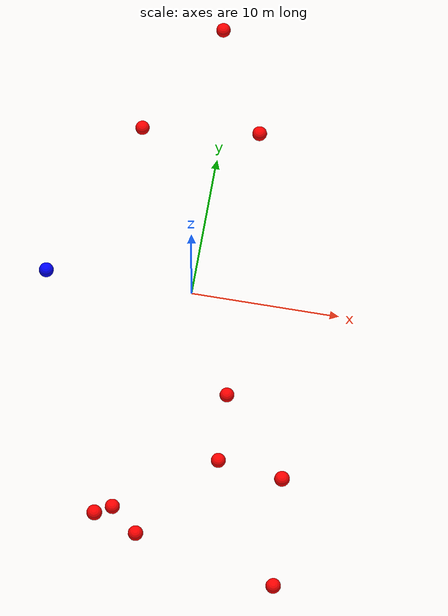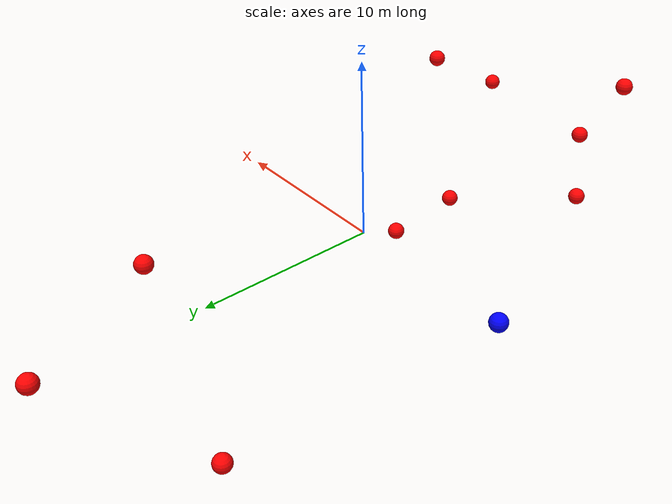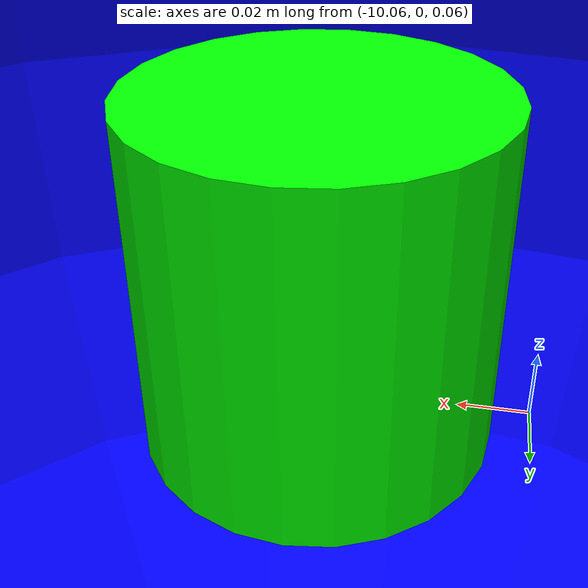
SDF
<?xml version="1.0" ?>
<sdf version="1.8">
    <world name="3d_world">
        <physics name="1ms" type="ode">
            <max_step_size>0.001</max_step_size>
            <real_time_factor>1.0</real_time_factor>
            <real_time_update_rate>1000.0</real_time_update_rate>
        </physics>
        <gravity>0 0 0</gravity>

        <plugin
            filename="gz-sim-physics-system"
            name="gz::sim::v8::systems::Physics">
        </plugin>
        <plugin
            filename="libignition-gazebo-user-commands-system.so"
            name="ignition::gazebo::systems::UserCommands">
        </plugin>
        <plugin
            filename="gz-sim-scene-broadcaster-system"
            name="gz::sim::systems::SceneBroadcaster">
        </plugin>
        <plugin
            filename="gz-sim-sensors-system"
            name="gz::sim::systems::Sensors">
            <render_engine>ogre2</render_engine>
        </plugin>

        <light type="directional" name="sun">
            <cast_shadows>true</cast_shadows>
            <pose>0 0 10 0 0 0</pose>
            <diffuse>0.8 0.8 0.8 1</diffuse>
            <specular>0.2 0.2 0.2 1</specular>
            <attenuation>
                <range>1000</range>
                <constant>0.9</constant>
                <linear>0.01</linear>
                <quadratic>0.001</quadratic>
            </attenuation>
            <direction>-0.5 0.1 -0.9</direction>
        </light>

        <!-- AGENTE -->
        <model name='agente' canonical_link='chassis'>
            <pose relative_to='world'>-10.0 0 0.0 0 0 0</pose>
            <link name='chassis'>
                <pose relative_to='__model__'>0.0 0 0.0 0 0 0</pose>
                <inertial>
                    <mass>1.14395</mass>
                    <inertia>
                        <ixx>0.095329</ixx>
                        <ixy>0</ixy>
                        <ixz>0</ixz>
                        <iyy>0.381317</iyy>
                        <iyz>0</iyz>
                        <izz>0.476646</izz>
                    </inertia>
                </inertial>
                <visual name='visual'>
                    <geometry>
                        <sphere>
                            <radius>0.5</radius>
                        </sphere>
                    </geometry>
                    <material>
                        <ambient>0.0 0.0 1.0 1</ambient>
                        <diffuse>0.0 0.0 1.0 1</diffuse>
                        <specular>0.0 0.0 1.0 1</specular>
                    </material>
                </visual>
                <collision name='collision'>
                    <geometry>
                        <sphere>
                            <radius>0.5</radius>
                        </sphere>
                    </geometry>
                </collision>
                <enable_gravity>false</enable_gravity>
            </link>

            <link name='lidar_link'>
                <pose relative_to='chassis'>0.0 0 0.1 0 0 0</pose>
                <inertial>
                    <mass>0.1</mass>
                    <inertia>
                        <ixx>0.000166667</ixx>
                        <iyy>0.000166667</iyy>
                        <izz>0.000166667</izz>
                    </inertia>
                </inertial>
                <collision name='collision'>
                    <geometry>
                        <cylinder>
                            <radius>0.05</radius>
                            <length>0.1</length>
                        </cylinder>
                    </geometry>
                </collision>
                <visual name='visual'>
                    <geometry>
                        <cylinder>
                            <radius>0.05</radius>
                            <length>0.1</length>
                        </cylinder>
                    </geometry>
                    <material>
                        <ambient>0.0 1.0 0.0 1</ambient>
                        <diffuse>0.0 1.0 0.0 1</diffuse>
                        <specular>0.0 1.0 0.0 1</specular>
                    </material>
                </visual>
                <sensor name="lidar" type="gpu_lidar">
                    <topic>scan</topic>
                    <update_rate>10</update_rate>
                    <lidar>
                        <scan>
                            <horizontal>
                                <samples>5000</samples>
                                <resolution>1</resolution>
                                <min_angle>-3.14159</min_angle>
                                <max_angle>3.14159</max_angle>
                            </horizontal>
                        </scan>
                        <range>
                            <min>0.1</min>
                            <max>10.0</max>
                            <resolution>0.01</resolution>
                        </range>
                    </lidar>
                    <visualize>true</visualize>
                    <always_on>true</always_on>
                    <update_rate>10</update_rate>
                    <pose_frame>lidar</pose_frame>
                </sensor>
                <enable_gravity>false</enable_gravity>
            </link>

            <joint name="lidar_joint" type="fixed">
                <parent>chassis</parent>
                <child>lidar_link</child>
            </joint>

            <plugin
                filename="ignition-gazebo-joint-state-publisher-system"
                name="ignition::gazebo::systems::JointStatePublisher">
            </plugin>
            <plugin
                filename="ignition-gazebo-odometry-publisher-system"
                name="ignition::gazebo::systems::OdometryPublisher">
                <dimensions>3</dimensions>
            </plugin>
            <plugin
                filename="ignition-gazebo-velocity-control-system"
                name="ignition::gazebo::systems::VelocityControl">
                <initial_linear>0.0 0 0</initial_linear>
                <initial_angular>0 0 0.0</initial_angular>
            </plugin>
            <plugin
                filename="libignition-gazebo-pose-publisher-system.so"
                name="ignition::gazebo::systems::PosePublisher">
                <topic>/agente/pose</topic>
                <frame_id>agente</frame_id>
                <update_rate>30</update_rate>
            </plugin>
        </model>

        <!-- OBSTACLE 1 -->
        <model name='obstacle_1' canonical_link='obstacle'>
            <static>false</static>
            <pose relative_to='world'>8.16 -13.08 3.64 0 0 0</pose>
            <link name='obstacle'>
                <pose relative_to='__model__'>0.0 0 0.0 0 0 0</pose>
                <visual name='visual'>
                    <geometry>
                        <sphere>
                            <radius>0.50</radius>
                        </sphere>
                    </geometry>
                    <material>
                        <ambient>1.0 0.0 0.0 1</ambient>
                        <diffuse>1.0 0.0 0.0 1</diffuse>
                        <specular>1.0 0.0 0.0 1</specular>
                    </material>
                </visual>
                <collision name='collision'>
                    <geometry>
                        <sphere>
                            <radius>0.50</radius>
                        </sphere>
                    </geometry>
                </collision>
                <enable_gravity>false</enable_gravity>
            </link>

            <plugin
                filename="ignition-gazebo-velocity-control-system"
                name="ignition::gazebo::systems::VelocityControl">
                <initial_linear>-0.47 1.87 -0.52</initial_linear>
                <initial_angular>0 0 0</initial_angular>
            </plugin>

            <plugin
                filename="ignition-gazebo-odometry-publisher-system"
                name="ignition::gazebo::systems::OdometryPublisher">
                <dimensions>3</dimensions>
            </plugin>
        </model>

        <!-- OBSTACLE 2 -->
        <model name='obstacle_2' canonical_link='obstacle'>
            <static>false</static>
            <pose relative_to='world'>-5.89 13.24 -3.59 0 0 0</pose>
            <link name='obstacle'>
                <pose relative_to='__model__'>0.0 0 0.0 0 0 0</pose>
                <visual name='visual'>
                    <geometry>
                        <sphere>
                            <radius>0.50</radius>
                        </sphere>
                    </geometry>
                    <material>
                        <ambient>1.0 0.0 0.0 1</ambient>
                        <diffuse>1.0 0.0 0.0 1</diffuse>
                        <specular>1.0 0.0 0.0 1</specular>
                    </material>
                </visual>
                <collision name='collision'>
                    <geometry>
                        <sphere>
                            <radius>0.50</radius>
                        </sphere>
                    </geometry>
                </collision>
                <enable_gravity>false</enable_gravity>
            </link>

            <plugin
                filename="ignition-gazebo-velocity-control-system"
                name="ignition::gazebo::systems::VelocityControl">
                <initial_linear>1.05 -1.64 0.44</initial_linear>
                <initial_angular>0 0 0</initial_angular>
            </plugin>

            <plugin
                filename="ignition-gazebo-odometry-publisher-system"
                name="ignition::gazebo::systems::OdometryPublisher">
                <dimensions>3</dimensions>
            </plugin>
        </model>

        <!-- OBSTACLE 3 -->
        <model name='obstacle_3' canonical_link='obstacle'>
            <static>false</static>
            <pose relative_to='world'>-3.20 -17.56 4.34 0 0 0</pose>
            <link name='obstacle'>
                <pose relative_to='__model__'>0.0 0 0.0 0 0 0</pose>
                <visual name='visual'>
                    <geometry>
                        <sphere>
                            <radius>0.50</radius>
                        </sphere>
                    </geometry>
                    <material>
                        <ambient>1.0 0.0 0.0 1</ambient>
                        <diffuse>1.0 0.0 0.0 1</diffuse>
                        <specular>1.0 0.0 0.0 1</specular>
                    </material>
                </visual>
                <collision name='collision'>
                    <geometry>
                        <sphere>
                            <radius>0.50</radius>
                        </sphere>
                    </geometry>
                </collision>
                <enable_gravity>false</enable_gravity>
            </link>

            <plugin
                filename="ignition-gazebo-velocity-control-system"
                name="ignition::gazebo::systems::VelocityControl">
                <initial_linear>0.91 1.73 -0.43</initial_linear>
                <initial_angular>0 0 0</initial_angular>
            </plugin>

            <plugin
                filename="ignition-gazebo-odometry-publisher-system"
                name="ignition::gazebo::systems::OdometryPublisher">
                <dimensions>3</dimensions>
            </plugin>
        </model>

        <!-- OBSTACLE 4 -->
        <model name='obstacle_4' canonical_link='obstacle'>
            <static>false</static>
            <pose relative_to='world'>-0.70 -17.24 0.20 0 0 0</pose>
            <link name='obstacle'>
                <pose relative_to='__model__'>0.0 0 0.0 0 0 0</pose>
                <visual name='visual'>
                    <geometry>
                        <sphere>
                            <radius>0.50</radius>
                        </sphere>
                    </geometry>
                    <material>
                        <ambient>1.0 0.0 0.0 1</ambient>
                        <diffuse>1.0 0.0 0.0 1</diffuse>
                        <specular>1.0 0.0 0.0 1</specular>
                    </material>
                </visual>
                <collision name='collision'>
                    <geometry>
                        <sphere>
                            <radius>0.50</radius>
                        </sphere>
                    </geometry>
                </collision>
                <enable_gravity>false</enable_gravity>
            </link>

            <plugin
                filename="ignition-gazebo-velocity-control-system"
                name="ignition::gazebo::systems::VelocityControl">
                <initial_linear>0.14 1.99 -0.02</initial_linear>
                <initial_angular>0 0 0</initial_angular>
            </plugin>

            <plugin
                filename="ignition-gazebo-odometry-publisher-system"
                name="ignition::gazebo::systems::OdometryPublisher">
                <dimensions>3</dimensions>
            </plugin>
        </model>

        <!-- OBSTACLE 5 -->
        <model name='obstacle_5' canonical_link='obstacle'>
            <static>false</static>
            <pose relative_to='world'>2.65 11.59 1.93 0 0 0</pose>
            <link name='obstacle'>
                <pose relative_to='__model__'>0.0 0 0.0 0 0 0</pose>
                <visual name='visual'>
                    <geometry>
                        <sphere>
                            <radius>0.50</radius>
                        </sphere>
                    </geometry>
                    <material>
                        <ambient>1.0 0.0 0.0 1</ambient>
                        <diffuse>1.0 0.0 0.0 1</diffuse>
                        <specular>1.0 0.0 0.0 1</specular>
                    </material>
                </visual>
                <collision name='collision'>
                    <geometry>
                        <sphere>
                            <radius>0.50</radius>
                        </sphere>
                    </geometry>
                </collision>
                <enable_gravity>false</enable_gravity>
            </link>

            <plugin
                filename="ignition-gazebo-velocity-control-system"
                name="ignition::gazebo::systems::VelocityControl">
                <initial_linear>-0.59 -1.89 -0.31</initial_linear>
                <initial_angular>0 0 0</initial_angular>
            </plugin>

            <plugin
                filename="ignition-gazebo-odometry-publisher-system"
                name="ignition::gazebo::systems::OdometryPublisher">
                <dimensions>3</dimensions>
            </plugin>
        </model>

        <!-- OBSTACLE 6 -->
        <model name='obstacle_6' canonical_link='obstacle'>
            <static>false</static>
            <pose relative_to='world'>-1.15 19.20 1.50 0 0 0</pose>
            <link name='obstacle'>
                <pose relative_to='__model__'>0.0 0 0.0 0 0 0</pose>
                <visual name='visual'>
                    <geometry>
                        <sphere>
                            <radius>0.50</radius>
                        </sphere>
                    </geometry>
                    <material>
                        <ambient>1.0 0.0 0.0 1</ambient>
                        <diffuse>1.0 0.0 0.0 1</diffuse>
                        <specular>1.0 0.0 0.0 1</specular>
                    </material>
                </visual>
                <collision name='collision'>
                    <geometry>
                        <sphere>
                            <radius>0.50</radius>
                        </sphere>
                    </geometry>
                </collision>
                <enable_gravity>false</enable_gravity>
            </link>

            <plugin
                filename="ignition-gazebo-velocity-control-system"
                name="ignition::gazebo::systems::VelocityControl">
                <initial_linear>-0.16 -1.99 -0.16</initial_linear>
                <initial_angular>0 0 0</initial_angular>
            </plugin>

            <plugin
                filename="ignition-gazebo-odometry-publisher-system"
                name="ignition::gazebo::systems::OdometryPublisher">
                <dimensions>3</dimensions>
            </plugin>
        </model>

        <!-- OBSTACLE 7 -->
        <model name='obstacle_7' canonical_link='obstacle'>
            <static>false</static>
            <pose relative_to='world'>3.33 -5.35 -3.96 0 0 0</pose>
            <link name='obstacle'>
                <pose relative_to='__model__'>0.0 0 0.0 0 0 0</pose>
                <visual name='visual'>
                    <geometry>
                        <sphere>
                            <radius>0.50</radius>
                        </sphere>
                    </geometry>
                    <material>
                        <ambient>1.0 0.0 0.0 1</ambient>
                        <diffuse>1.0 0.0 0.0 1</diffuse>
                        <specular>1.0 0.0 0.0 1</specular>
                    </material>
                </visual>
                <collision name='collision'>
                    <geometry>
                        <sphere>
                            <radius>0.50</radius>
                        </sphere>
                    </geometry>
                </collision>
                <enable_gravity>false</enable_gravity>
            </link>

            <plugin
                filename="ignition-gazebo-velocity-control-system"
                name="ignition::gazebo::systems::VelocityControl">
                <initial_linear>-0.18 1.08 0.80</initial_linear>
                <initial_angular>0 0 0</initial_angular>
            </plugin>

            <plugin
                filename="ignition-gazebo-odometry-publisher-system"
                name="ignition::gazebo::systems::OdometryPublisher">
                <dimensions>3</dimensions>
            </plugin>
        </model>

        <!-- OBSTACLE 8 -->
        <model name='obstacle_8' canonical_link='obstacle'>
            <static>false</static>
            <pose relative_to='world'>3.56 -10.16 -3.65 0 0 0</pose>
            <link name='obstacle'>
                <pose relative_to='__model__'>0.0 0 0.0 0 0 0</pose>
                <visual name='visual'>
                    <geometry>
                        <sphere>
                            <radius>0.50</radius>
                        </sphere>
                    </geometry>
                    <material>
                        <ambient>1.0 0.0 0.0 1</ambient>
                        <diffuse>1.0 0.0 0.0 1</diffuse>
                        <specular>1.0 0.0 0.0 1</specular>
                    </material>
                </visual>
                <collision name='collision'>
                    <geometry>
                        <sphere>
                            <radius>0.50</radius>
                        </sphere>
                    </geometry>
                </collision>
                <enable_gravity>false</enable_gravity>
            </link>

            <plugin
                filename="ignition-gazebo-velocity-control-system"
                name="ignition::gazebo::systems::VelocityControl">
                <initial_linear>-0.93 1.67 0.60</initial_linear>
                <initial_angular>0 0 0</initial_angular>
            </plugin>

            <plugin
                filename="ignition-gazebo-odometry-publisher-system"
                name="ignition::gazebo::systems::OdometryPublisher">
                <dimensions>3</dimensions>
            </plugin>
        </model>

        <!-- OBSTACLE 9 -->
        <model name='obstacle_9' canonical_link='obstacle'>
            <static>false</static>
            <pose relative_to='world'>8.67 -19.12 -0.08 0 0 0</pose>
            <link name='obstacle'>
                <pose relative_to='__model__'>0.0 0 0.0 0 0 0</pose>
                <visual name='visual'>
                    <geometry>
                        <sphere>
                            <radius>0.50</radius>
                        </sphere>
                    </geometry>
                    <material>
                        <ambient>1.0 0.0 0.0 1</ambient>
                        <diffuse>1.0 0.0 0.0 1</diffuse>
                        <specular>1.0 0.0 0.0 1</specular>
                    </material>
                </visual>
                <collision name='collision'>
                    <geometry>
                        <sphere>
                            <radius>0.50</radius>
                        </sphere>
                    </geometry>
                </collision>
                <enable_gravity>false</enable_gravity>
            </link>

            <plugin
                filename="ignition-gazebo-velocity-control-system"
                name="ignition::gazebo::systems::VelocityControl">
                <initial_linear>-0.16 1.99 0.01</initial_linear>
                <initial_angular>0 0 0</initial_angular>
            </plugin>

            <plugin
                filename="ignition-gazebo-odometry-publisher-system"
                name="ignition::gazebo::systems::OdometryPublisher">
                <dimensions>3</dimensions>
            </plugin>
        </model>

        <!-- OBSTACLE 10 -->
        <model name='obstacle_10' canonical_link='obstacle'>
            <static>false</static>
            <pose relative_to='world'>-2.75 -14.91 -2.46 0 0 0</pose>
            <link name='obstacle'>
                <pose relative_to='__model__'>0.0 0 0.0 0 0 0</pose>
                <visual name='visual'>
                    <geometry>
                        <sphere>
                            <radius>0.50</radius>
                        </sphere>
                    </geometry>
                    <material>
                        <ambient>1.0 0.0 0.0 1</ambient>
                        <diffuse>1.0 0.0 0.0 1</diffuse>
                        <specular>1.0 0.0 0.0 1</specular>
                    </material>
                </visual>
                <collision name='collision'>
                    <geometry>
                        <sphere>
                            <radius>0.50</radius>
                        </sphere>
                    </geometry>
                </collision>
                <enable_gravity>false</enable_gravity>
            </link>

            <plugin
                filename="ignition-gazebo-velocity-control-system"
                name="ignition::gazebo::systems::VelocityControl">
                <initial_linear>-0.06 1.97 0.33</initial_linear>
                <initial_angular>0 0 0</initial_angular>
            </plugin>

            <plugin
                filename="ignition-gazebo-odometry-publisher-system"
                name="ignition::gazebo::systems::OdometryPublisher">
                <dimensions>3</dimensions>
            </plugin>
        </model>

    </world>
</sdf>
